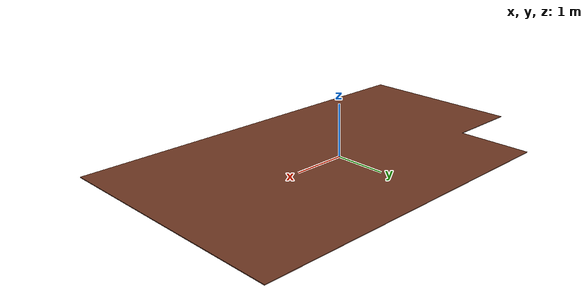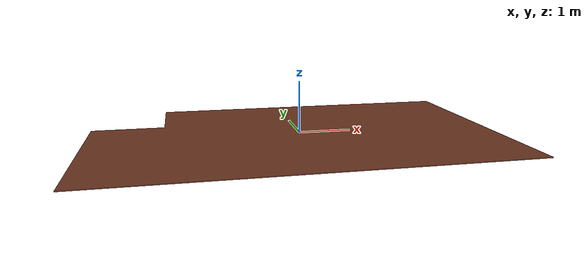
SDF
<?xml version="1.0" ?>
<sdf version="1.5">
  <model name="unit-floor">
    <static>true</static>
    <link name="link">
        <collision name="collision">
         <pose>0.0 0.0 0.015 0 0 0</pose>
         <geometry>
            <mesh>
                <uri>model://floor/meshes/floor_cols.stl</uri>
            </mesh>
        </geometry>
      </collision>
      <visual name="visual">
        <cast_shadows>false</cast_shadows>
        <pose>0.0 0.0 0.015 0 0 0</pose>
        <geometry>
          <mesh>
            <uri>model://floor/meshes/floor.dae</uri>
          </mesh>
        </geometry>
      </visual>
    </link>
  </model>
</sdf>
